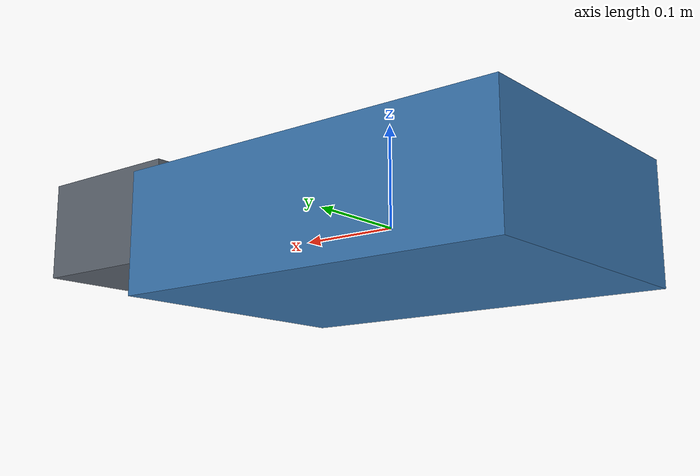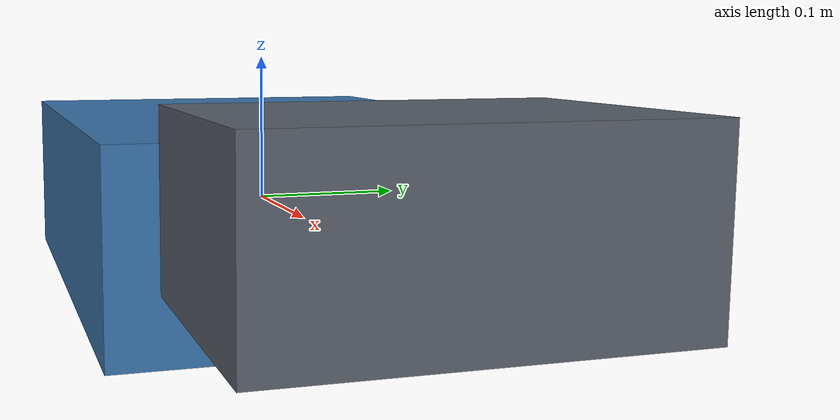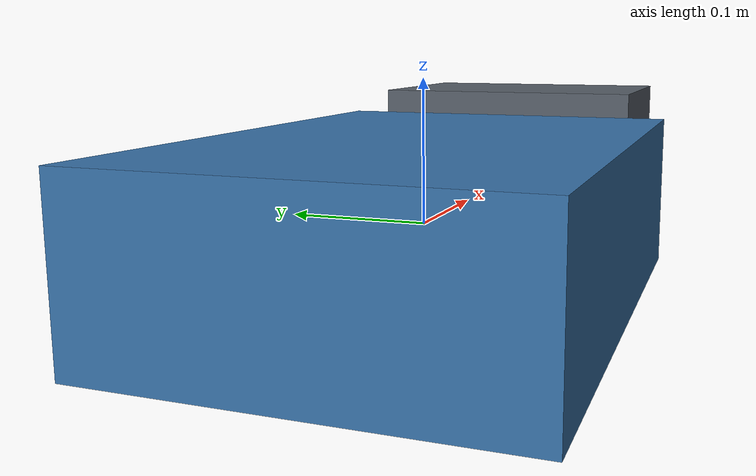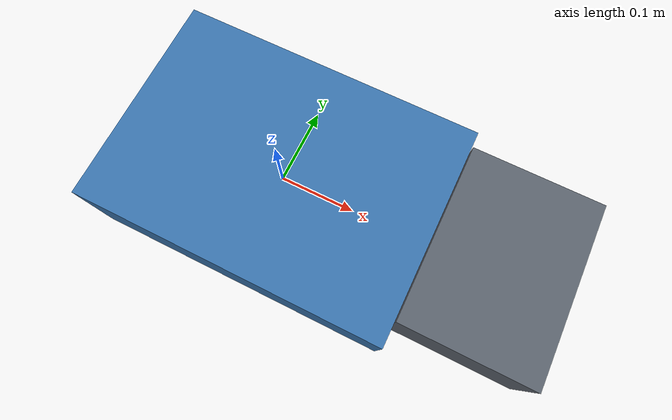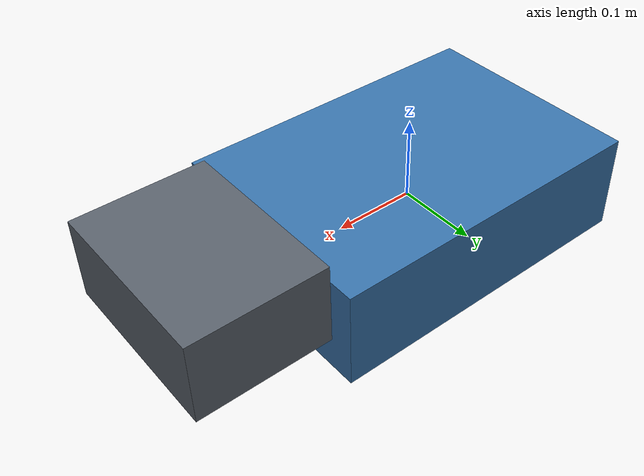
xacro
<?xml version="1.0"?>
<robot xmlns:xacro="http://www.ros.org/wiki/xacro" name="hansel_head">
  <xacro:property name="body_length" value="0.40"/>
  <xacro:property name="body_width" value="0.28"/>
  <xacro:property name="body_height" value="0.12"/>

  <material name="hansel_blue">
    <color rgba="0.22 0.45 0.67 1.0"/>
  </material>
  <material name="sensor_gray">
    <color rgba="0.35 0.38 0.42 1.0"/>
  </material>

  <link name="base_link">
    <visual>
      <geometry>
        <box size="${body_length} ${body_width} ${body_height}"/>
      </geometry>
      <material name="hansel_blue"/>
    </visual>
    <collision>
      <geometry>
        <box size="${body_length} ${body_width} ${body_height}"/>
      </geometry>
    </collision>
    <inertial>
      <mass value="2.0"/>
      <origin xyz="0 0 0"/>
      <inertia ixx="0.015" ixy="0" ixz="0" iyy="0.030" iyz="0" izz="0.035"/>
    </inertial>
  </link>

  <link name="front_sensor_assembly">
    <visual>
      <origin xyz="0.08 0 0"/>
      <geometry>
        <box size="0.16 0.22 0.10"/>
      </geometry>
      <material name="sensor_gray"/>
    </visual>
    <collision>
      <origin xyz="0.08 0 0"/>
      <geometry>
        <box size="0.16 0.22 0.10"/>
      </geometry>
    </collision>
    <inertial>
      <mass value="0.5"/>
      <origin xyz="0.08 0 0"/>
      <inertia ixx="0.003" ixy="0" ixz="0" iyy="0.004" iyz="0" izz="0.005"/>
    </inertial>
  </link>

  <joint name="front_tilt_joint" type="revolute">
    <parent link="base_link"/>
    <child link="front_sensor_assembly"/>
    <origin xyz="0.20 0 0.03" rpy="0 0 0"/>
    <axis xyz="0 1 0"/>
    <limit lower="-3.141593" upper="3.141593" effort="5.0" velocity="3.141593"/>
  </joint>

  <link name="radar_link"/>
  <joint name="radar_fixed_joint" type="fixed">
    <parent link="front_sensor_assembly"/>
    <child link="radar_link"/>
    <origin xyz="0.16 0 0" rpy="0 0 0"/>
  </joint>

  <link name="camera_link"/>
  <joint name="camera_fixed_joint" type="fixed">
    <parent link="front_sensor_assembly"/>
    <child link="camera_link"/>
    <origin xyz="0.16 0 0.04" rpy="0 0 0"/>
  </joint>
</robot>
